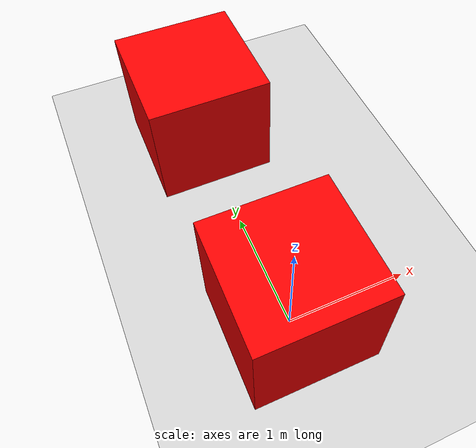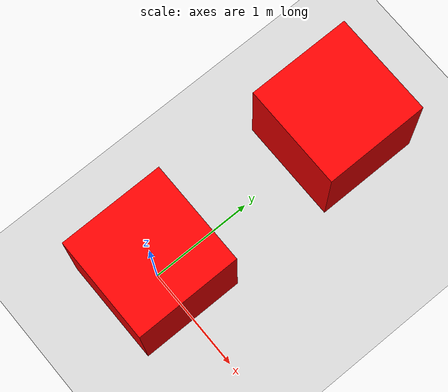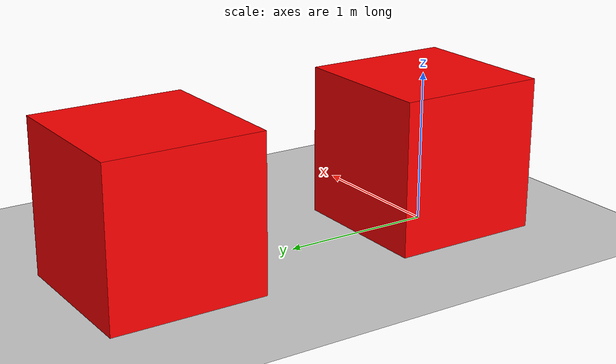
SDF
<?xml version="1.0"?>
<sdf version="1.6">
	<world name="empty_world">
		<physics name="1ms" type="ignored">
			<max_step_size>0.001</max_step_size>
			<real_time_factor>1.0</real_time_factor>
		</physics>
		<plugin
			filename="gz-sim-physics-system"
			name="gz::sim::systems::Physics">
		</plugin>
		<plugin
			filename="gz-sim-sensors-system"
			name="gz::sim::systems::Sensors">
			<render_engine>ogre2</render_engine>
		</plugin>
		<plugin
			filename="gz-sim-user-commands-system"
			name="gz::sim::systems::UserCommands">
		</plugin>
		<plugin
			filename="gz-sim-scene-broadcaster-system"
			name="gz::sim::systems::SceneBroadcaster">
		</plugin>

		<gui fullscreen="0">
			<!-- 3D scene -->
			<plugin filename="GzScene3D" name="3D View">
				<ignition-gui>
					<title>3D View</title>
					<property type="bool" key="showTitleBar">false</property>
					<property type="string" key="state">docked</property>
				</ignition-gui>

				<engine>ogre2</engine>
				<scene>scene</scene>
				<ambient_light>1.0 1.0 1.0</ambient_light>
				<background_color>0.8 0.8 0.8</background_color>
				<camera_pose>-6 0 6 0 0.5 0</camera_pose>
			</plugin>
			<!-- World control -->
			<plugin filename="WorldControl" name="World control">
				<ignition-gui>
					<title>World control</title>
					<property type="bool" key="showTitleBar">false</property>
					<property type="bool" key="resizable">false</property>
					<property type="double" key="height">72</property>
					<property type="double" key="width">121</property>
					<property type="double" key="z">1</property>

					<property type="string" key="state">floating</property>
					<anchors target="3D View">
						<line own="left" target="left" />
						<line own="bottom" target="bottom" />
					</anchors>
				</ignition-gui>

				<play_pause>true</play_pause>
				<step>true</step>
				<start_paused>true</start_paused>
				<service>/world/world_demo/control</service>
				<stats_topic>/world/world_demo/stats</stats_topic>
			</plugin>
			<!-- World statistics -->
			<plugin filename="WorldStats" name="World stats">
				<ignition-gui>
					<title>World stats</title>
					<property type="bool" key="showTitleBar">false</property>
					<property type="bool" key="resizable">false</property>
					<property type="double" key="height">110</property>
					<property type="double" key="width">290</property>
					<property type="double" key="z">1</property>

					<property type="string" key="state">floating</property>
					<anchors target="3D View">
						<line own="right" target="right" />
						<line own="bottom" target="bottom" />
					</anchors>
				</ignition-gui>

				<sim_time>true</sim_time>
				<real_time>true</real_time>
				<real_time_factor>true</real_time_factor>
				<iterations>true</iterations>
				<topic>/world/world_demo/stats</topic>

			</plugin>
			<!-- Entity tree -->
			<plugin filename="EntityTree" name="Entity tree">
			</plugin>

			<plugin filename="ImageDisplay" name="Image Display">
			</plugin>

		</gui>
		<light type="directional" name="sun">
			<cast_shadows>true</cast_shadows>
			<pose>0 0 10 0 0 0</pose>
			<diffuse>0.8 0.8 0.8 1</diffuse>
			<specular>0.2 0.2 0.2 1</specular>
			<attenuation>
				<range>1000</range>
				<constant>0.9</constant>
				<linear>0.01</linear>
				<quadratic>0.001</quadratic>
			</attenuation>
			<direction>-0.5 0.1 -0.9</direction>
		</light>
		<model name="ground_plane">
			<static>true</static>
			<link name="link">
				<collision name="collision">
					<geometry>
						<plane>
							<normal>0 0 1</normal>
							<size>100 100</size>
						</plane>
					</geometry>
				</collision>
				<visual name="visual">
					<geometry>
						<plane>
							<normal>0 0 1</normal>
							<size>100 100</size>
						</plane>
					</geometry>
					<material>
						<ambient>0.8 0.8 0.8 1</ambient>
						<diffuse>0.8 0.8 0.8 1</diffuse>
						<specular>0.8 0.8 0.8 1</specular>
					</material>
				</visual>
			</link>
		</model>
		<model name="box">
			<pose>0 0 0.5 0 0 0</pose>
			<link name="box_link">
				<inertial>
					<inertia>
						<ixx>1</ixx>
						<ixy>0</ixy>
						<ixz>0</ixz>
						<iyy>1</iyy>
						<iyz>0</iyz>
						<izz>1</izz>
					</inertia>
					<mass>1.0</mass>
				</inertial>
				<collision name="box_collision">
					<geometry>
						<box>
							<size>1 1 1</size>
						</box>
					</geometry>
				</collision>

				<visual name="box_visual">
					<geometry>
						<box>
							<size>1 1 1</size>
						</box>
					</geometry>
					<material>
						<ambient>1 0 0 1</ambient>
						<diffuse>1 0 0 1</diffuse>
						<specular>1 0 0 1</specular>
					</material>
				</visual>
			</link>
		</model>
		<model name="box2">
			<pose>0 2 0.5 0 0 0</pose>
			<link name="box_link">
				<inertial>
					<inertia>
						<ixx>1</ixx>
						<ixy>0</ixy>
						<ixz>0</ixz>
						<iyy>1</iyy>
						<iyz>0</iyz>
						<izz>1</izz>
					</inertia>
					<mass>1.0</mass>
				</inertial>
				<collision name="box_collision">
					<geometry>
						<box>
							<size>1 1 1</size>
						</box>
					</geometry>
				</collision>

				<visual name="box_visual">
					<geometry>
						<box>
							<size>1 1 1</size>
						</box>
					</geometry>
					<material>
						<ambient>1 0 0 1</ambient>
						<diffuse>1 0 0 1</diffuse>
						<specular>1 0 0 1</specular>
					</material>
				</visual>
			</link>
		</model>
	</world>
</sdf>
